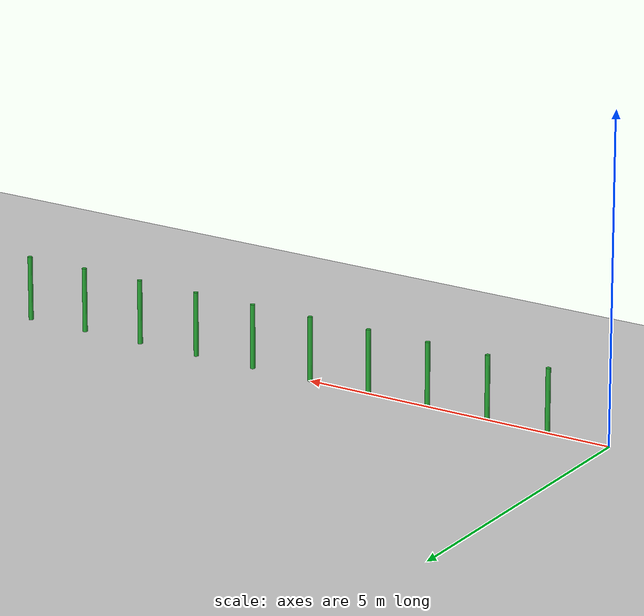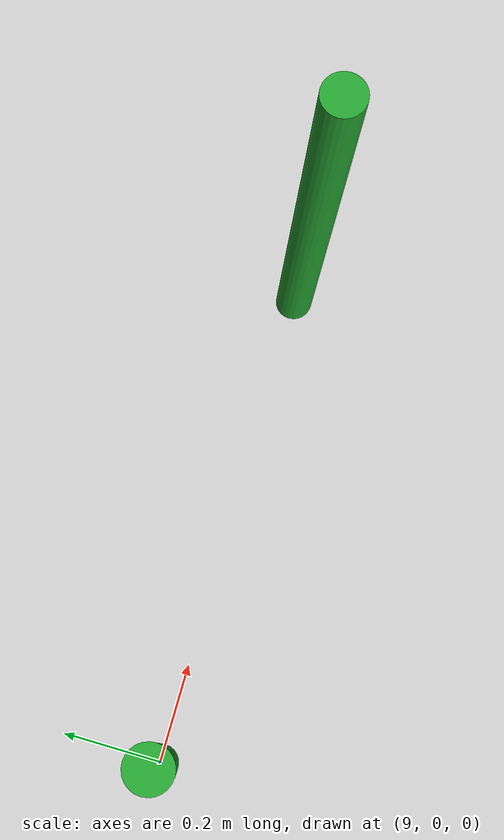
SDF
<sdf version="1.6">
 <world name="default">
  <light name="sun" type="directional">
   <pose>0 0 10 0 -0 0</pose>
   <diffuse>0.8 0.8 0.8 1</diffuse>
   <specular>0.2 0.2 0.2 1</specular>
   <attenuation>
    <range>1000</range>
    <constant>0.9</constant>
    <linear>0.01</linear>
    <quadratic>0.001</quadratic>
   </attenuation>
   <direction>-0.5 0.1 -0.9</direction>
  </light>
  <model name="ground_plane">
   <static>1</static>
   <link name="link">
    <collision name="collision">
     <geometry><plane><normal>0 0 1</normal><size>100 100</size></plane></geometry>
     <surface>
      <contact><collide_bitmask>65535</collide_bitmask></contact>
      <friction><ode><mu>100</mu><mu2>50</mu2></ode></friction>
     </surface>
    </collision>
    <visual name="visual">
     <cast_shadows>0</cast_shadows>
     <geometry><plane><normal>0 0 1</normal><size>100 100</size></plane></geometry>
     <material>
      <script><uri>file://media/materials/scripts/gazebo.material</uri><name>Gazebo/Grey</name></script>
     </material>
    </visual>
   </link>
  </model>
  <gravity>0 0 -9.8</gravity>
  <magnetic_field>6e-06 2.3e-05 -4.2e-05</magnetic_field>
  <atmosphere type="adiabatic"/>
  <physics name="default_physics" default="0" type="ode">
   <max_step_size>0.001</max_step_size>
   <real_time_factor>1</real_time_factor>
   <real_time_update_rate>1000</real_time_update_rate>
  </physics>
  <scene><ambient>0.4 0.4 0.4 1</ambient><background>0.7 0.7 0.7 1</background><shadows>1</shadows></scene>
  <audio><device>default</device></audio>
  <spherical_coordinates>
   <surface_model>EARTH_WGS84</surface_model>
   <latitude_deg>0</latitude_deg>
   <longitude_deg>0</longitude_deg>
   <elevation>0</elevation>
   <heading_deg>0</heading_deg>
  </spherical_coordinates>
  <model name="unit_cylinder">
   <pose>1.00323 0.005265 0.499991 -1e-06 2e-06 -3e-05</pose>
   <link name="link">
    <inertial>
     <mass>1</mass>
     <inertia><ixx>0.145833</ixx><ixy>0</ixy><ixz>0</ixz><iyy>0.145833</iyy><iyz>0</iyz><izz>0.125</izz></inertia>
    </inertial>
    <collision name="collision">
     <geometry><cylinder><radius>0.0367615</radius><length>1</length></cylinder></geometry>
    </collision>
    <visual name="visual">
     <geometry><cylinder><radius>0.0367615</radius><length>1</length></cylinder></geometry>
     <material>
      <script><uri>file://media/materials/scripts/gazebo.material</uri><name>Gazebo/Green</name></script>
     </material>
    </visual>
   </link>
  </model>
  <model name="unit_cylinder_clone">
   <pose>2.00177 0.000447 0.499991 -0 1e-06 -2.8e-05</pose>
   <link name="link">
    <inertial>
     <mass>1</mass>
     <inertia><ixx>0.145833</ixx><ixy>0</ixy><ixz>0</ixz><iyy>0.145833</iyy><iyz>0</iyz><izz>0.125</izz></inertia>
    </inertial>
    <collision name="collision">
     <geometry><cylinder><radius>0.0367616</radius><length>1</length></cylinder></geometry>
    </collision>
    <visual name="visual">
     <geometry><cylinder><radius>0.0367616</radius><length>1</length></cylinder></geometry>
     <material>
      <script><uri>file://media/materials/scripts/gazebo.material</uri><name>Gazebo/Green</name></script>
     </material>
    </visual>
   </link>
  </model>
  <model name="unit_cylinder_clone_0">
   <pose>3.00345 -0.004094 0.499991 -1e-06 2e-06 -3e-05</pose>
   <link name="link">
    <inertial>
     <mass>1</mass>
     <inertia><ixx>0.145833</ixx><ixy>0</ixy><ixz>0</ixz><iyy>0.145833</iyy><iyz>0</iyz><izz>0.125</izz></inertia>
    </inertial>
    <collision name="collision">
     <geometry><cylinder><radius>0.0367616</radius><length>1</length></cylinder></geometry>
    </collision>
    <visual name="visual">
     <geometry><cylinder><radius>0.0367616</radius><length>1</length></cylinder></geometry>
     <material>
      <script><uri>file://media/materials/scripts/gazebo.material</uri><name>Gazebo/Green</name></script>
     </material>
    </visual>
   </link>
  </model>
  <model name="unit_cylinder_clone_1">
   <pose>3.99819 0.006321 0.499991 0 -2e-06 -3e-05</pose>
   <link name="link">
    <inertial>
     <mass>1</mass>
     <inertia><ixx>0.145833</ixx><ixy>0</ixy><ixz>0</ixz><iyy>0.145833</iyy><iyz>0</iyz><izz>0.125</izz></inertia>
    </inertial>
    <collision name="collision">
     <geometry><cylinder><radius>0.0367616</radius><length>1</length></cylinder></geometry>
    </collision>
    <visual name="visual">
     <geometry><cylinder><radius>0.0367616</radius><length>1</length></cylinder></geometry>
     <material>
      <script><uri>file://media/materials/scripts/gazebo.material</uri><name>Gazebo/Green</name></script>
     </material>
    </visual>
   </link>
  </model>
  <model name="unit_cylinder_clone_2">
   <pose>5 0 0.499991 0 2e-06 -3.1e-05</pose>
   <link name="link">
    <inertial>
     <mass>1</mass>
     <inertia><ixx>0.145833</ixx><ixy>0</ixy><ixz>0</ixz><iyy>0.145833</iyy><iyz>0</iyz><izz>0.125</izz></inertia>
    </inertial>
    <collision name="collision">
     <geometry><cylinder><radius>0.0367616</radius><length>1</length></cylinder></geometry>
    </collision>
    <visual name="visual">
     <geometry><cylinder><radius>0.0367616</radius><length>1</length></cylinder></geometry>
     <material>
      <script><uri>file://media/materials/scripts/gazebo.material</uri><name>Gazebo/Green</name></script>
     </material>
    </visual>
   </link>
  </model>
  <model name="unit_cylinder_clone_3">
   <pose>6 0 0.499991 0 2e-06 -3.1e-05</pose>
   <link name="link">
    <inertial>
     <mass>1</mass>
     <inertia><ixx>0.145833</ixx><ixy>0</ixy><ixz>0</ixz><iyy>0.145833</iyy><iyz>0</iyz><izz>0.125</izz></inertia>
    </inertial>
    <collision name="collision">
     <geometry><cylinder><radius>0.0367616</radius><length>1</length></cylinder></geometry>
    </collision>
    <visual name="visual">
     <geometry><cylinder><radius>0.0367616</radius><length>1</length></cylinder></geometry>
     <material>
      <script><uri>file://media/materials/scripts/gazebo.material</uri><name>Gazebo/Green</name></script>
     </material>
    </visual>
   </link>
  </model>
  <model name="unit_cylinder_clone_4">
   <pose>7 0 0.499991 0 2e-06 -3.1e-05</pose>
   <link name="link">
    <inertial>
     <mass>1</mass>
     <inertia><ixx>0.145833</ixx><ixy>0</ixy><ixz>0</ixz><iyy>0.145833</iyy><iyz>0</iyz><izz>0.125</izz></inertia>
    </inertial>
    <collision name="collision">
     <geometry><cylinder><radius>0.0367616</radius><length>1</length></cylinder></geometry>
    </collision>
    <visual name="visual">
     <geometry><cylinder><radius>0.0367616</radius><length>1</length></cylinder></geometry>
     <material>
      <script><uri>file://media/materials/scripts/gazebo.material</uri><name>Gazebo/Green</name></script>
     </material>
    </visual>
   </link>
  </model>
  <model name="unit_cylinder_clone_5">
   <pose>8 0 0.499991 -0 2e-06 -2.8e-05</pose>
   <link name="link">
    <inertial>
     <mass>1</mass>
     <inertia><ixx>0.145833</ixx><ixy>0</ixy><ixz>0</ixz><iyy>0.145833</iyy><iyz>0</iyz><izz>0.125</izz></inertia>
    </inertial>
    <collision name="collision">
     <geometry><cylinder><radius>0.0367616</radius><length>1</length></cylinder></geometry>
    </collision>
    <visual name="visual">
     <geometry><cylinder><radius>0.0367616</radius><length>1</length></cylinder></geometry>
     <material>
      <script><uri>file://media/materials/scripts/gazebo.material</uri><name>Gazebo/Green</name></script>
     </material>
    </visual>
   </link>
  </model>
  <model name="unit_cylinder_clone_6">
   <pose>9 0 0.499991 0 2e-06 -3.1e-05</pose>
   <link name="link">
    <inertial>
     <mass>1</mass>
     <inertia><ixx>0.145833</ixx><ixy>0</ixy><ixz>0</ixz><iyy>0.145833</iyy><iyz>0</iyz><izz>0.125</izz></inertia>
    </inertial>
    <collision name="collision">
     <geometry><cylinder><radius>0.0367616</radius><length>1</length></cylinder></geometry>
    </collision>
    <visual name="visual">
     <geometry><cylinder><radius>0.0367616</radius><length>1</length></cylinder></geometry>
     <material>
      <script><uri>file://media/materials/scripts/gazebo.material</uri><name>Gazebo/Green</name></script>
     </material>
    </visual>
   </link>
  </model>
  <model name="unit_cylinder_clone_7">
   <pose>9.9915 0.002037 0.499991 0 2e-06 -3.1e-05</pose>
   <link name="link">
    <inertial>
     <mass>1</mass>
     <inertia><ixx>0.145833</ixx><ixy>0</ixy><ixz>0</ixz><iyy>0.145833</iyy><iyz>0</iyz><izz>0.125</izz></inertia>
    </inertial>
    <collision name="collision">
     <geometry><cylinder><radius>0.0367616</radius><length>1</length></cylinder></geometry>
    </collision>
    <visual name="visual">
     <geometry><cylinder><radius>0.0367616</radius><length>1</length></cylinder></geometry>
     <material>
      <script><uri>file://media/materials/scripts/gazebo.material</uri><name>Gazebo/Green</name></script>
     </material>
    </visual>
   </link>
  </model>
 </world>
</sdf>
